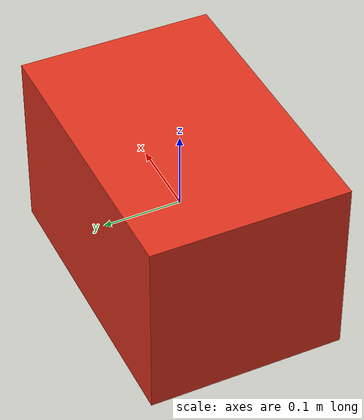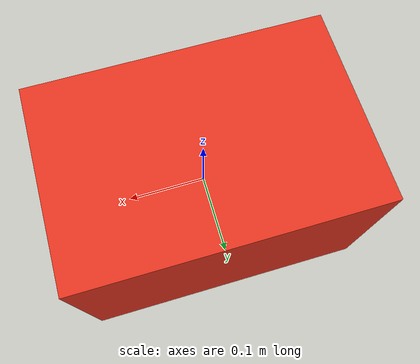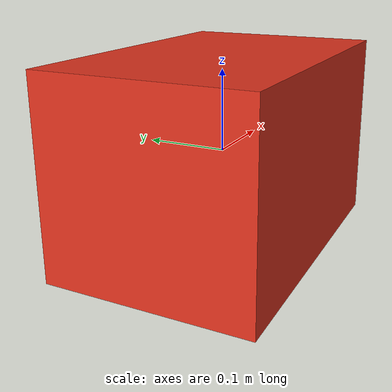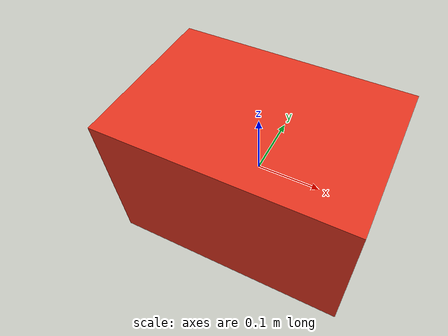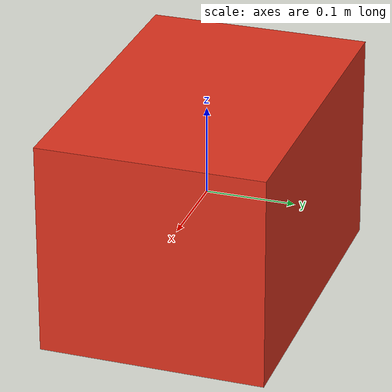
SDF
<?xml version="1.0"?>
<sdf version="1.7">
  <model name="wall_brick">
    <static>true</static>
    <link name="link">
      <visual name="v">
        <geometry><box><size>0.375 0.25 0.238</size></box></geometry>
        <material><ambient>0.55 0.12 0.08 1</ambient><diffuse>0.88 0.20 0.12 1</diffuse></material>
      </visual>
      <collision name="c">
        <geometry><box><size>0.375 0.25 0.238</size></box></geometry>
      </collision>
    </link>
  </model>
</sdf>
